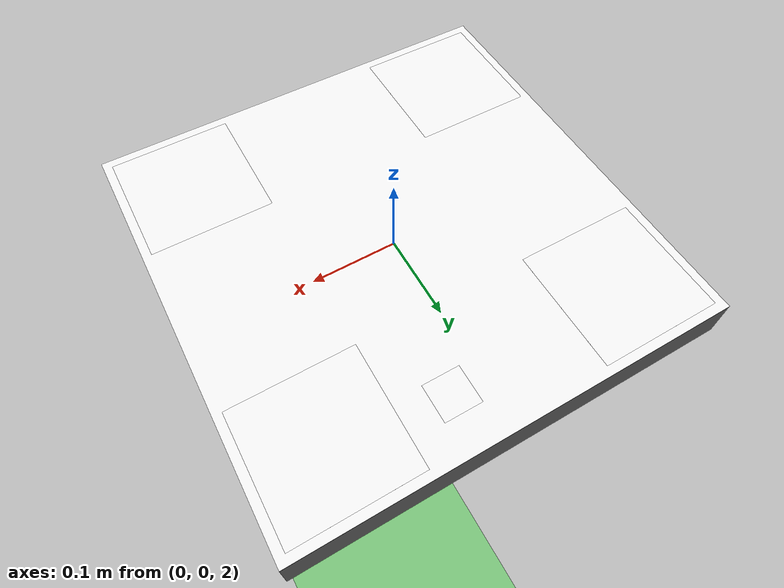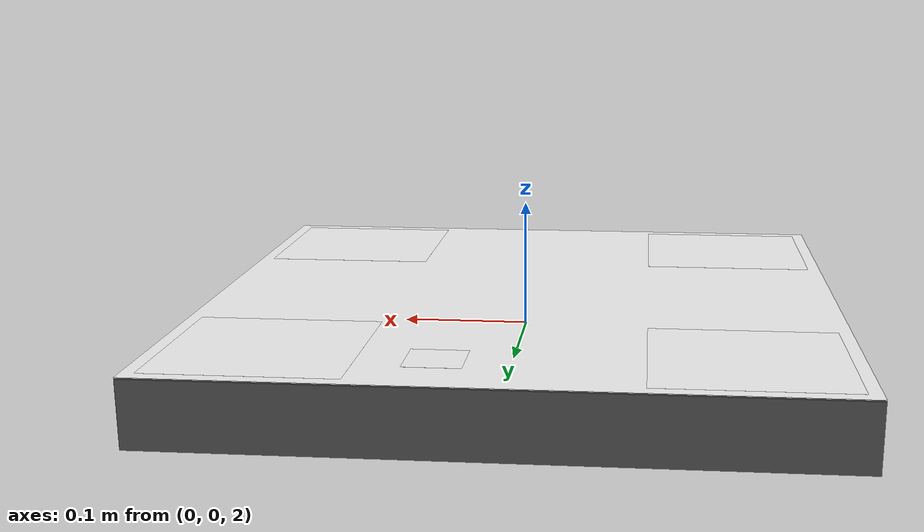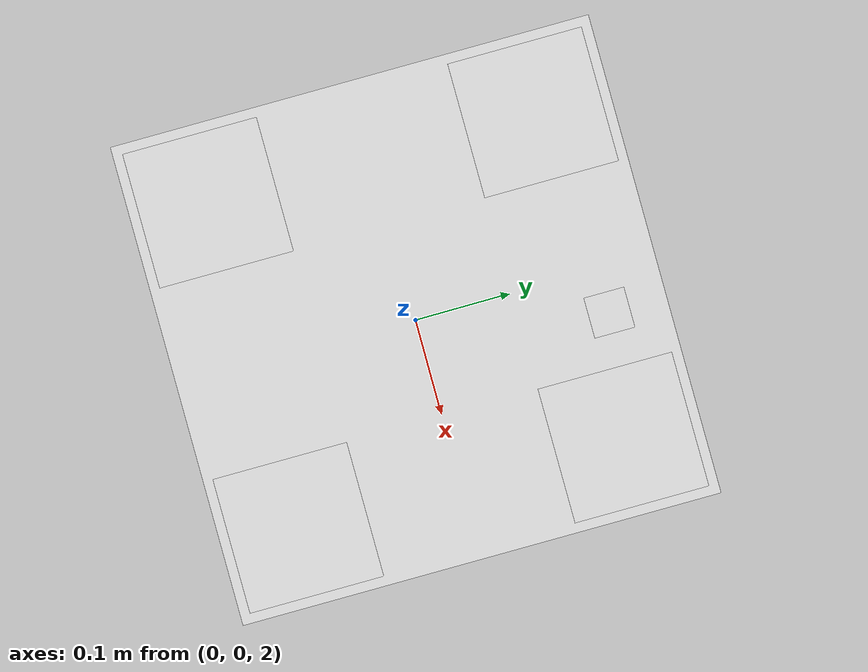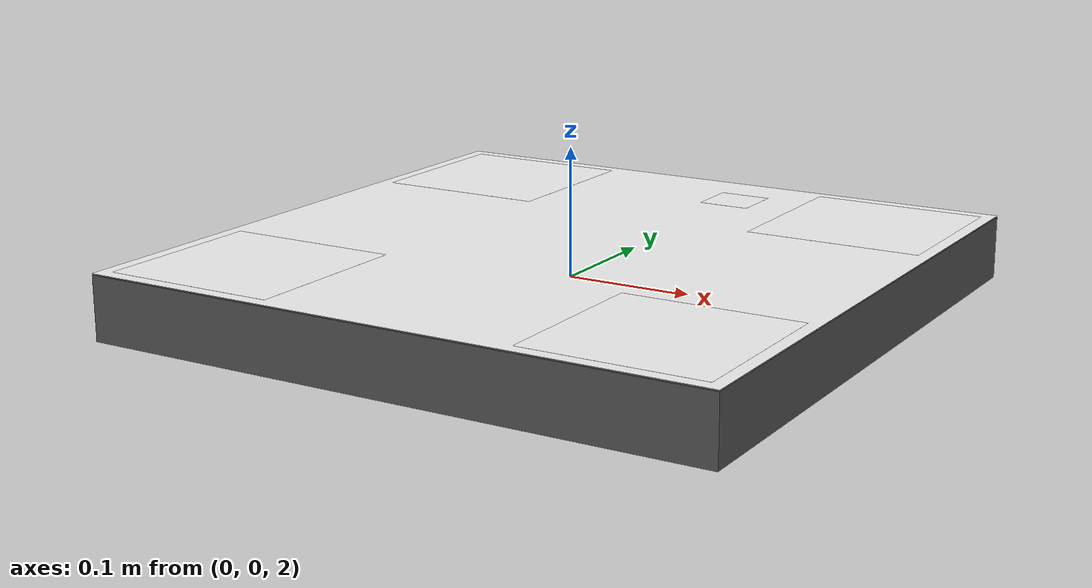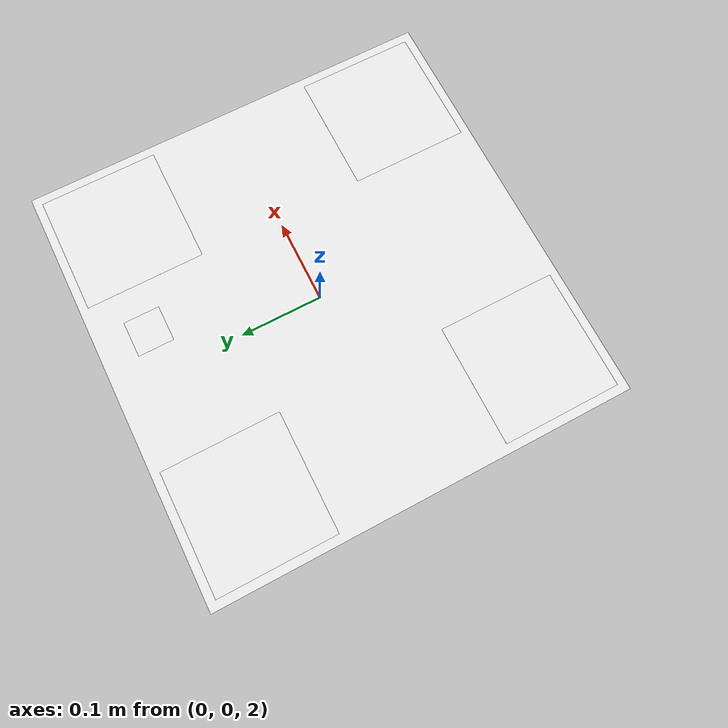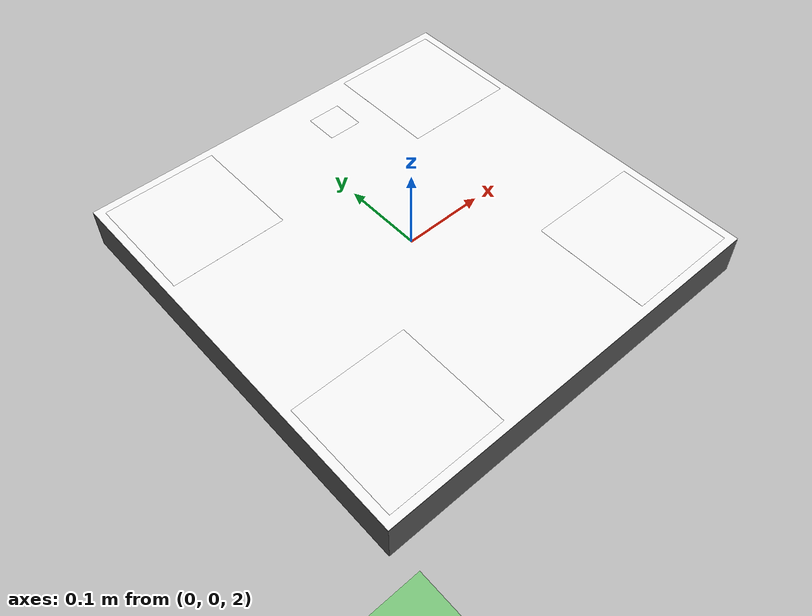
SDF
<?xml version="1.0" encoding="UTF-8"?>
<sdf version="1.9">
  <world name="aruco_platform">
    <physics type="ode">
      <max_step_size>0.004</max_step_size>
      <real_time_factor>1.0</real_time_factor>
      <real_time_update_rate>250</real_time_update_rate>
    </physics>
    <gravity>0 0 -9.8</gravity>
    <magnetic_field>6e-06 2.3e-05 -4.2e-05</magnetic_field>
    <atmosphere type="adiabatic"/>
    <scene>
      <grid>false</grid>
      <ambient>0.4 0.4 0.4 1</ambient>
      <background>0.7 0.7 0.7 1</background>
      <shadows>true</shadows>
    </scene>

    <model name="ground_plane">
      <static>true</static>
      <link name="link">
        <collision name="collision">
          <geometry>
            <plane>
              <normal>0 0 1</normal>
              <size>1 1</size>
            </plane>
          </geometry>
          <surface>
            <friction>
              <ode/>
            </friction>
            <bounce/>
            <contact/>
          </surface>
        </collision>
        <visual name="visual">
          <geometry>
            <plane>
              <normal>0 0 1</normal>
              <size>100 100</size>
            </plane>
          </geometry>
          <material>
            <ambient>0.8 0.8 0.8 1</ambient>
            <diffuse>0.8 0.8 0.8 1</diffuse>
            <specular>0.8 0.8 0.8 1</specular>
          </material>
        </visual>
        <pose>0 0 0 0 -0 0</pose>
        <inertial>
          <pose>0 0 0 0 -0 0</pose>
          <mass>1</mass>
          <inertia>
            <ixx>1</ixx>
            <ixy>0</ixy>
            <ixz>0</ixz>
            <iyy>1</iyy>
            <iyz>0</iyz>
            <izz>1</izz>
          </inertia>
        </inertial>
        <enable_wind>false</enable_wind>
      </link>
      <pose>0 0 0 0 -0 0</pose>
      <self_collide>false</self_collide>
    </model>

<model name="mocap_plane">
      <static>true</static>
      <link name="link">
        <collision name="collision">
          <geometry>
            <plane>
              <normal>0 0 1</normal>
              <size>1 1</size>
            </plane>
          </geometry>
          <surface>
            <friction>
              <ode/>
            </friction>
            <bounce/>
            <contact/>
          </surface>
        </collision>
        <visual name="visual">
          <geometry>
            <plane>
              <normal>0 0 1</normal>
              <size>10 5</size>
            </plane>
          </geometry>
          <material>
            <ambient>0.8 0.8 0.8 1</ambient>
            <diffuse>0.8 0.5 0.5 1</diffuse>
            <specular>0.8 0.8 0.8 1</specular>
          </material>
        </visual>
        <pose>0 0 0.001 0 -0 0</pose>
        <inertial>
          <pose>0 0 0 0 -0 0</pose>
          <mass>1</mass>
          <inertia>
            <ixx>1</ixx>
            <ixy>0</ixy>
            <ixz>0</ixz>
            <iyy>1</iyy>
            <iyz>0</iyz>
            <izz>1</izz>
          </inertia>
        </inertial>
        <enable_wind>false</enable_wind>
      </link>
      <pose>0 0 0 0 -0 0</pose>
      <self_collide>false</self_collide>
    </model>

    <model name="safe_plane">
      <static>true</static>
      <link name="link">
        <collision name="collision">
          <geometry>
            <plane>
              <normal>0 0 1</normal>
              <size>1 1</size>
            </plane>
          </geometry>
          <surface>
            <friction>
              <ode/>
            </friction>
            <bounce/>
            <contact/>
          </surface>
        </collision>
        <visual name="visual">
          <geometry>
            <plane>
              <normal>0 0 1</normal>
              <size>2 2</size>
            </plane>
          </geometry>
          <material>
            <ambient>0.8 0.8 0.8 1</ambient>
            <diffuse>0.5 0.8 0.5 1</diffuse>
            <specular>0.8 0.8 0.8 1</specular>
          </material>
        </visual>
        <pose>0 0 0.005 0 -0 0</pose>
        <inertial>
          <pose>0 0 0 0 -0 0</pose>
          <mass>1</mass>
          <inertia>
            <ixx>1</ixx>
            <ixy>0</ixy>
            <ixz>0</ixz>
            <iyy>1</iyy>
            <iyz>0</iyz>
            <izz>1</izz>
          </inertia>
        </inertial>
        <enable_wind>false</enable_wind>
      </link>
      <pose>0 0 0 0 -0 0</pose>
      <self_collide>false</self_collide>
    </model>

    <light name="sunUTC" type="directional">
      <pose>0 0 500 0 -0 0</pose>
      <cast_shadows>true</cast_shadows>
      <intensity>1</intensity>
      <direction>0.001 0.625 -0.78</direction>
      <diffuse>0.904 0.904 0.904 1</diffuse>
      <specular>0.271 0.271 0.271 1</specular>
      <attenuation>
        <range>2000</range>
        <linear>0</linear>
        <constant>1</constant>
        <quadratic>0</quadratic>
      </attenuation>
      <spot>
        <inner_angle>0</inner_angle>
        <outer_angle>0</outer_angle>
        <falloff>0</falloff>
      </spot>
    </light>
    <spherical_coordinates>
      <surface_model>EARTH_WGS84</surface_model>
      <world_frame_orientation>ENU</world_frame_orientation>
      <latitude_deg>47.397971057728974</latitude_deg>
      <longitude_deg> 8.546163739800146</longitude_deg>
      <elevation>0</elevation>
    </spherical_coordinates>

    <include>
      <pose>0 0 2 0 0 0</pose>
      <uri>model://barge</uri>
    </include>

  </world>
</sdf>

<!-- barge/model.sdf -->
<sdf version="1.9">
  <model name="barge">
    <link name="platform_link">
      <visual name="platform_visual">
        <geometry>
          <box>
            <size>0.5 0.5 0.05</size>
          </box>
        </geometry>
        <material>
          <ambient>0.3 0.3 0.3 1</ambient>
          <diffuse>0.3 0.3 0.3 1</diffuse>
          <specular>0.1 0.1 0.1 1</specular>
        </material>
      </visual>
      <collision name="platform_collision">
        <geometry>
          <box>
            <size>0.5 0.5 0.1</size>
          </box>
        </geometry>
      </collision>
      <pose>0 0 0 0 0 0</pose>
      <inertial>
        <mass>10000</mass>
        <inertia>
          <ixx>10000</ixx>
          <iyy>10000</iyy>
          <izz>10000</izz>
        </inertia>
      </inertial>

      <!-- GPS tracking the barge -->
      <sensor name="navsat_sensor" type="navsat">
        <gz_frame_id>platform_link</gz_frame_id>
        <always_on>1</always_on>
        <update_rate>30</update_rate>
      </sensor>

    </link>

    <plugin
      filename="libBargeController.so"
      name="custom::BargeController">
      <link_name>platform_link</link_name>
    </plugin>

    <!-- ArucoTag model for good practice -->
    <include>
      <uri>model://arucotag</uri>
      <name>arucotag_model</name>
      <pose>0 0 0.026 0 0 0</pose>
    </include>

    <!-- Fixed joint -->
    <joint name="fixed_joint_to_arucotag" type="fixed">
      <parent>platform_link</parent>   <!-- A link in the parent model -->
      <child>arucotag_model::base</child> <!-- Link inside child model -->
    </joint>

    <!-- Pose publisher -->
    <plugin
      filename="gz-sim-odometry-publisher-system"
      name="gz::sim::systems::OdometryPublisher">
      <odom_publish_frequency>50</odom_publish_frequency>
      <dimensions>3</dimensions>
      <odom_topic>barge/odom</odom_topic>
      <odom_covariance_topic>barge/odom_covariance</odom_covariance_topic>
    </plugin>

    <plugin
    	filename="gz-sim-pose-publisher-system"
    	name="gz::sim::systems::PosePublisher">
    	<publish_link_pose>true</publish_link_pose>
    	<publish_collision_pose>false</publish_collision_pose>
      	<publish_visual_pose>false</publish_visual_pose>
      	<publish_nested_model_pose>false</publish_nested_model_pose>
    </plugin>

  </model>
</sdf>

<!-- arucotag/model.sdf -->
<sdf version='1.9'>
  <model name='arucotag'>
    <static>true</static>
    <pose>0 0 0.001 0 0 0</pose>
    <link name='base'>
      <visual name='background_visual'>
        <geometry>
          <plane>
            <normal>0 0 1</normal>
            <size>0.5 0.5</size>
          </plane>
        </geometry>
        <material>
          <diffuse>1 1 1 1</diffuse>
          <specular>0.2 0.2 0.2 1</specular>
        </material>
      </visual>
      <visual name='tag_0_visual'>
        <pose>0.17 0.17 0.0002 0 0 0</pose>
        <geometry>
          <plane>
            <normal>0 0 1</normal>
            <size>0.14 0.14</size>
          </plane>
        </geometry>
        <material>
          <diffuse>1 1 1 1</diffuse>
          <specular>0.4 0.4 0.4 1</specular>
          <pbr>
            <metal>
              <albedo_map>model://arucotag/aruco_0.png</albedo_map>
            </metal>
          </pbr>
        </material>
      </visual>
      <visual name='tag_1_visual'>
        <pose>-0.17 0.17 0.0002 0 0 0</pose>
        <geometry>
          <plane>
            <normal>0 0 1</normal>
            <size>0.14 0.14</size>
          </plane>
        </geometry>
        <material>
          <diffuse>1 1 1 1</diffuse>
          <specular>0.4 0.4 0.4 1</specular>
          <pbr>
            <metal>
              <albedo_map>model://arucotag/aruco_1.png</albedo_map>
            </metal>
          </pbr>
        </material>
      </visual>
      <visual name='tag_2_visual'>
        <pose>-0.17 -0.17 0.0002 0 0 0</pose>
        <geometry>
          <plane>
            <normal>0 0 1</normal>
            <size>0.14 0.14</size>
          </plane>
        </geometry>
        <material>
          <diffuse>1 1 1 1</diffuse>
          <specular>0.4 0.4 0.4 1</specular>
          <pbr>
            <metal>
              <albedo_map>model://arucotag/aruco_2.png</albedo_map>
            </metal>
          </pbr>
        </material>
      </visual>
      <visual name='tag_3_visual'>
        <pose>0.17 -0.17 0.0002 0 0 0</pose>
        <geometry>
          <plane>
            <normal>0 0 1</normal>
            <size>0.14 0.14</size>
          </plane>
        </geometry>
        <material>
          <diffuse>1 1 1 1</diffuse>
          <specular>0.4 0.4 0.4 1</specular>
          <pbr>
            <metal>
              <albedo_map>model://arucotag/aruco_3.png</albedo_map>
            </metal>
          </pbr>
        </material>
      </visual>
      <visual name='tag_4_visual'>
        <pose>0.0 0.11 0.0002 0 0 0</pose>
        <geometry>
          <plane>
            <normal>0 0 1</normal>
            <size>0.07 0.07</size>
          </plane>
        </geometry>
        <material>
          <diffuse>1 1 1 1</diffuse>
          <specular>0.4 0.4 0.4 1</specular>
          <pbr>
            <metal>
              <albedo_map>model://arucotag/aruco_4.png</albedo_map>
            </metal>
          </pbr>
        </material>
      </visual>
      <visual name='tag_5_visual'>
        <pose>-0.11 0.0 0.0002 0 0 0</pose>
        <geometry>
          <plane>
            <normal>0 0 1</normal>
            <size>0.07 0.07</size>
          </plane>
        </geometry>
        <material>
          <diffuse>1 1 1 1</diffuse>
          <specular>0.4 0.4 0.4 1</specular>
          <pbr>
            <metal>
              <albedo_map>model://arucotag/aruco_5.png</albedo_map>
            </metal>
          </pbr>
        </material>
      </visual>
      <visual name='tag_6_visual'>
        <pose>0.0 -0.11 0.0002 0 0 0</pose>
        <geometry>
          <plane>
            <normal>0 0 1</normal>
            <size>0.07 0.07</size>
          </plane>
        </geometry>
        <material>
          <diffuse>1 1 1 1</diffuse>
          <specular>0.4 0.4 0.4 1</specular>
          <pbr>
            <metal>
              <albedo_map>model://arucotag/aruco_6.png</albedo_map>
            </metal>
          </pbr>
        </material>
      </visual>
      <visual name='tag_7_visual'>
        <pose>0.11 0.0 0.0002 0 0 0</pose>
        <geometry>
          <plane>
            <normal>0 0 1</normal>
            <size>0.07 0.07</size>
          </plane>
        </geometry>
        <material>
          <diffuse>1 1 1 1</diffuse>
          <specular>0.4 0.4 0.4 1</specular>
          <pbr>
            <metal>
              <albedo_map>model://arucotag/aruco_7.png</albedo_map>
            </metal>
          </pbr>
        </material>
      </visual>
      <visual name='tag_8_visual'>
        <pose>0.0 0.045 0.0002 0 0 0</pose>
        <geometry>
          <plane>
            <normal>0 0 1</normal>
            <size>0.025 0.025</size>
          </plane>
        </geometry>
        <material>
          <diffuse>1 1 1 1</diffuse>
          <specular>0.4 0.4 0.4 1</specular>
          <pbr>
            <metal>
              <albedo_map>model://arucotag/aruco_8.png</albedo_map>
            </metal>
          </pbr>
        </material>
      </visual>
      <visual name='tag_9_visual'>
        <pose>-0.045 0.0 0.0002 0 0 0</pose>
        <geometry>
          <plane>
            <normal>0 0 1</normal>
            <size>0.025 0.025</size>
          </plane>
        </geometry>
        <material>
          <diffuse>1 1 1 1</diffuse>
          <specular>0.4 0.4 0.4 1</specular>
          <pbr>
            <metal>
              <albedo_map>model://arucotag/aruco_9.png</albedo_map>
            </metal>
          </pbr>
        </material>
      </visual>
      <visual name='tag_10_visual'>
        <pose>0.0 -0.045 0.0002 0 0 0</pose>
        <geometry>
          <plane>
            <normal>0 0 1</normal>
            <size>0.025 0.025</size>
          </plane>
        </geometry>
        <material>
          <diffuse>1 1 1 1</diffuse>
          <specular>0.4 0.4 0.4 1</specular>
          <pbr>
            <metal>
              <albedo_map>model://arucotag/aruco_10.png</albedo_map>
            </metal>
          </pbr>
        </material>
      </visual>
      <visual name='tag_11_visual'>
        <pose>0.045 0.0 0.0002 0 0 0</pose>
        <geometry>
          <plane>
            <normal>0 0 1</normal>
            <size>0.025 0.025</size>
          </plane>
        </geometry>
        <material>
          <diffuse>1 1 1 1</diffuse>
          <specular>0.4 0.4 0.4 1</specular>
          <pbr>
            <metal>
              <albedo_map>model://arucotag/aruco_11.png</albedo_map>
            </metal>
          </pbr>
        </material>
      </visual>
      <visual name='tag_12_visual'>
        <pose>0.0 0.0 0.0002 0 0 0</pose>
        <geometry>
          <plane>
            <normal>0 0 1</normal>
            <size>0.018 0.018</size>
          </plane>
        </geometry>
        <material>
          <diffuse>1 1 1 1</diffuse>
          <specular>0.4 0.4 0.4 1</specular>
          <pbr>
            <metal>
              <albedo_map>model://arucotag/aruco_12.png</albedo_map>
            </metal>
          </pbr>
        </material>
      </visual>
      <!-- Small, flat drawing of the positive board axes.  It sits in the
           marker-free gap between the two large +Y-side tags. -->
      <visual name='board_positive_axes_drawing'>
        <pose>0.045 0.190 0.0005 0 0 0</pose>
        <geometry>
          <plane>
            <normal>0 0 1</normal>
            <size>0.042 0.042</size>
          </plane>
        </geometry>
        <material>
          <diffuse>1 1 1 1</diffuse>
          <specular>0 0 0 1</specular>
          <pbr>
            <metal>
              <albedo_map>model://arucotag/board_axes_xy.png</albedo_map>
            </metal>
          </pbr>
        </material>
      </visual>
    </link>
  </model>
</sdf>
